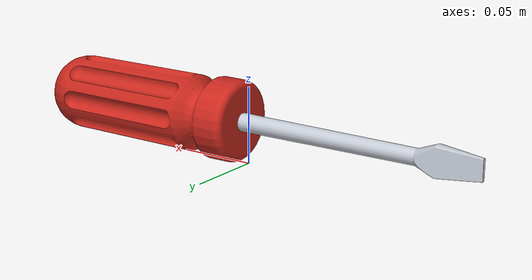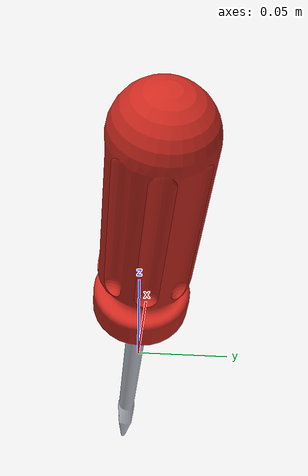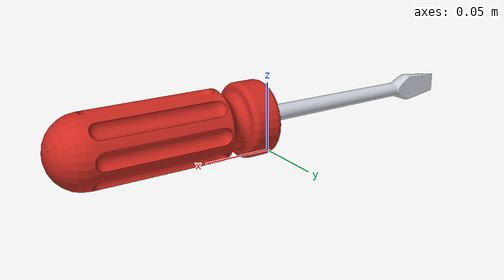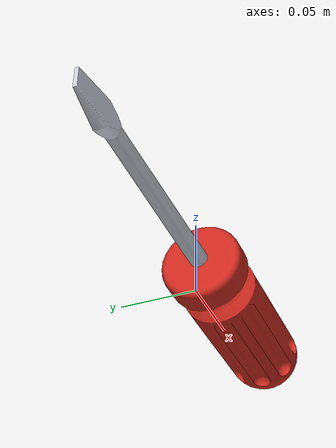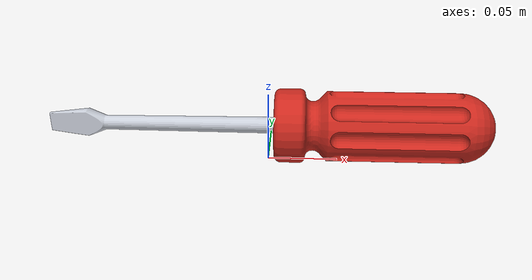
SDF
<?xml version="1.0"?>
<sdf version="1.6">
  <model name="safety_probe_kit">
    <link name="link">
      <inertial><mass>0.64</mass><inertia><ixx>0.00160</ixx><ixy>0</ixy><ixz>0</ixz><iyy>0.00768</iyy><iyz>0</iyz><izz>0.00768</izz></inertia></inertial>
      <collision name="collision"><geometry><mesh><uri>model://safety_probe_kit/meshes/screwdriver.dae</uri><scale>2 2 2</scale></mesh></geometry><surface><friction><ode><mu>1.0</mu><mu2>1.0</mu2></ode></friction><contact><ode><kp>1e6</kp><kd>1.0</kd><min_depth>0.001</min_depth><max_vel>0.01</max_vel></ode></contact></surface></collision>
      <visual name="imported_tool_mesh"><geometry><mesh><uri>model://safety_probe_kit/meshes/screwdriver.dae</uri><scale>2 2 2</scale></mesh></geometry></visual>
    </link>
  </model>
</sdf>
